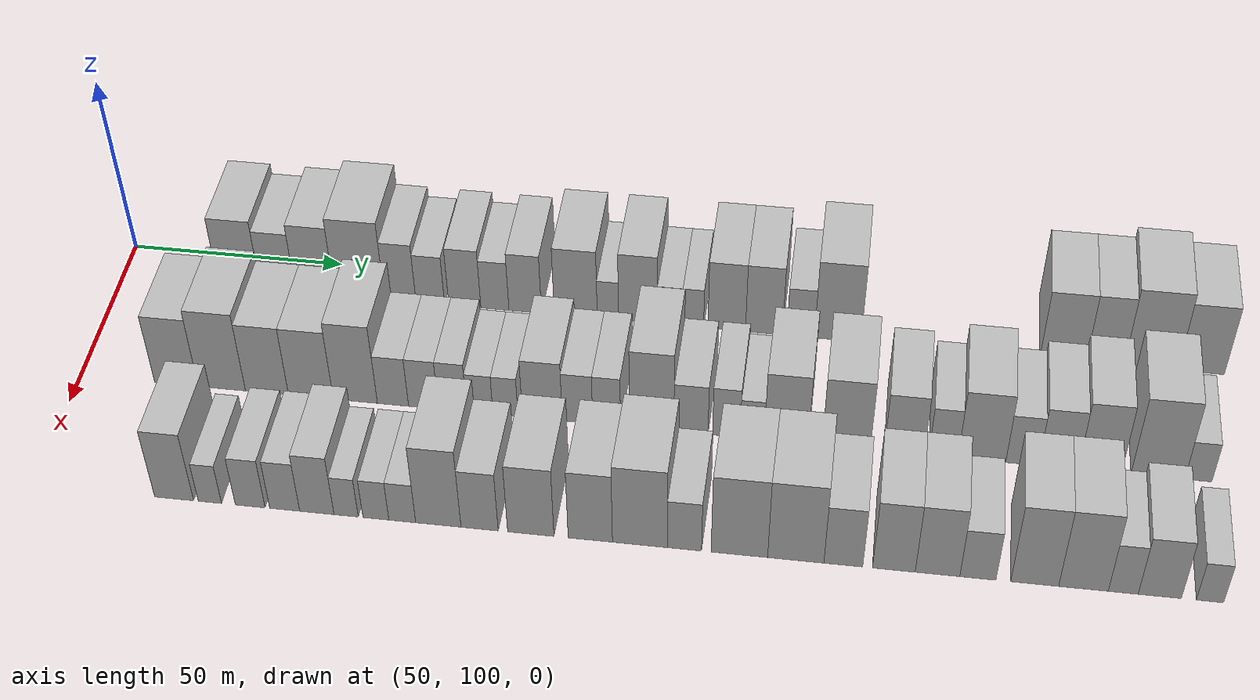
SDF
<sdf version="1.6">
 <world name="default">
  <model name="building_52">
   <static>1</static>
   <pose>50.0000 127.8642 0 0.000000 0.000000 0.000000</pose>
   <link name="link">
    <pose>0 0 10.50 0 0 0</pose>
    <collision name="collision"><geometry><box><size>20.0000 10.0431 21.0000</size></box></geometry></collision>
    <visual name="visual">
     <cast_shadows>0</cast_shadows>
     <geometry><box><size>20.0000 10.0431 21.0000</size></box></geometry>
     <material>
      <script>
       <uri>model://HANNAS_wall/materials/scripts</uri>
       <uri>model://HANNAS_wall/materials/textures</uri>
       <name>vrc/HANNAS_wall</name>
      </script>
     </material>
    </visual>
   </link>
  </model>
  <model name="building_53">
   <static>1</static>
   <pose>50.0000 137.0597 0 0.000000 0.000000 0.000000</pose>
   <link name="link">
    <pose>0 0 9.00 0 0 0</pose>
    <collision name="collision"><geometry><box><size>20.0000 8.3479 18.0000</size></box></geometry></collision>
    <visual name="visual">
     <cast_shadows>0</cast_shadows>
     <geometry><box><size>20.0000 8.3479 18.0000</size></box></geometry>
     <material>
      <script>
       <uri>model://HANNAS_wall/materials/scripts</uri>
       <uri>model://HANNAS_wall/materials/textures</uri>
       <name>vrc/HANNAS_wall</name>
      </script>
     </material>
    </visual>
   </link>
  </model>
  <model name="building_54">
   <static>1</static>
   <pose>50.0000 145.9074 0 0.000000 0.000000 0.000000</pose>
   <link name="link">
    <pose>0 0 10.50 0 0 0</pose>
    <collision name="collision"><geometry><box><size>20.0000 9.3477 21.0000</size></box></geometry></collision>
    <visual name="visual">
     <cast_shadows>0</cast_shadows>
     <geometry><box><size>20.0000 9.3477 21.0000</size></box></geometry>
     <material>
      <script>
       <uri>model://HANNAS_wall/materials/scripts</uri>
       <uri>model://HANNAS_wall/materials/textures</uri>
       <name>vrc/HANNAS_wall</name>
      </script>
     </material>
    </visual>
   </link>
  </model>
  <model name="building_55">
   <static>1</static>
   <pose>50.0000 156.5273 0 0.000000 0.000000 0.000000</pose>
   <link name="link">
    <pose>0 0 12.00 0 0 0</pose>
    <collision name="collision"><geometry><box><size>20.0000 11.8921 24.0000</size></box></geometry></collision>
    <visual name="visual">
     <cast_shadows>0</cast_shadows>
     <geometry><box><size>20.0000 11.8921 24.0000</size></box></geometry>
     <material>
      <script>
       <uri>model://HANNAS_wall/materials/scripts</uri>
       <uri>model://HANNAS_wall/materials/textures</uri>
       <name>vrc/HANNAS_wall</name>
      </script>
     </material>
    </visual>
   </link>
  </model>
  <model name="building_56">
   <static>1</static>
   <pose>50.0000 166.1714 0 0.000000 0.000000 0.000000</pose>
   <link name="link">
    <pose>0 0 9.00 0 0 0</pose>
    <collision name="collision"><geometry><box><size>20.0000 7.3960 18.0000</size></box></geometry></collision>
    <visual name="visual">
     <cast_shadows>0</cast_shadows>
     <geometry><box><size>20.0000 7.3960 18.0000</size></box></geometry>
     <material>
      <script>
       <uri>model://HANNAS_wall/materials/scripts</uri>
       <uri>model://HANNAS_wall/materials/textures</uri>
       <name>vrc/HANNAS_wall</name>
      </script>
     </material>
    </visual>
   </link>
  </model>
  <model name="building_57">
   <static>1</static>
   <pose>50.0000 173.2329 0 0.000000 0.000000 0.000000</pose>
   <link name="link">
    <pose>0 0 7.50 0 0 0</pose>
    <collision name="collision"><geometry><box><size>20.0000 6.7270 15.0000</size></box></geometry></collision>
    <visual name="visual">
     <cast_shadows>0</cast_shadows>
     <geometry><box><size>20.0000 6.7270 15.0000</size></box></geometry>
     <material>
      <script>
       <uri>model://HANNAS_wall/materials/scripts</uri>
       <uri>model://HANNAS_wall/materials/textures</uri>
       <name>vrc/HANNAS_wall</name>
      </script>
     </material>
    </visual>
   </link>
  </model>
  <model name="building_58">
   <static>1</static>
   <pose>50.0000 181.3587 0 0.000000 0.000000 0.000000</pose>
   <link name="link">
    <pose>0 0 9.00 0 0 0</pose>
    <collision name="collision"><geometry><box><size>20.0000 7.5245 18.0000</size></box></geometry></collision>
    <visual name="visual">
     <cast_shadows>0</cast_shadows>
     <geometry><box><size>20.0000 7.5245 18.0000</size></box></geometry>
     <material>
      <script>
       <uri>model://HANNAS_wall/materials/scripts</uri>
       <uri>model://HANNAS_wall/materials/textures</uri>
       <name>vrc/HANNAS_wall</name>
      </script>
     </material>
    </visual>
   </link>
  </model>
  <model name="building_59">
   <static>1</static>
   <pose>50.0000 188.4044 0 0.000000 0.000000 0.000000</pose>
   <link name="link">
    <pose>0 0 7.50 0 0 0</pose>
    <collision name="collision"><geometry><box><size>20.0000 6.5669 15.0000</size></box></geometry></collision>
    <visual name="visual">
     <cast_shadows>0</cast_shadows>
     <geometry><box><size>20.0000 6.5669 15.0000</size></box></geometry>
     <material>
      <script>
       <uri>model://HANNAS_wall/materials/scripts</uri>
       <uri>model://HANNAS_wall/materials/textures</uri>
       <name>vrc/HANNAS_wall</name>
      </script>
     </material>
    </visual>
   </link>
  </model>
  <model name="building_60">
   <static>1</static>
   <pose>50.0000 195.4860 0 0.000000 0.000000 0.000000</pose>
   <link name="link">
    <pose>0 0 9.00 0 0 0</pose>
    <collision name="collision"><geometry><box><size>20.0000 7.5963 18.0000</size></box></geometry></collision>
    <visual name="visual">
     <cast_shadows>0</cast_shadows>
     <geometry><box><size>20.0000 7.5963 18.0000</size></box></geometry>
     <material>
      <script>
       <uri>model://HANNAS_wall/materials/scripts</uri>
       <uri>model://HANNAS_wall/materials/textures</uri>
       <name>vrc/HANNAS_wall</name>
      </script>
     </material>
    </visual>
   </link>
  </model>
  <model name="building_61">
   <static>1</static>
   <pose>50.0000 207.2871 0 0.000000 0.000000 0.000000</pose>
   <link name="link">
    <pose>0 0 10.50 0 0 0</pose>
    <collision name="collision"><geometry><box><size>20.0000 10.0059 21.0000</size></box></geometry></collision>
    <visual name="visual">
     <cast_shadows>0</cast_shadows>
     <geometry><box><size>20.0000 10.0059 21.0000</size></box></geometry>
     <material>
      <script>
       <uri>model://HANNAS_wall/materials/scripts</uri>
       <uri>model://HANNAS_wall/materials/textures</uri>
       <name>vrc/HANNAS_wall</name>
      </script>
     </material>
    </visual>
   </link>
  </model>
  <model name="building_62">
   <static>1</static>
   <pose>50.0000 214.7658 0 0.000000 0.000000 0.000000</pose>
   <link name="link">
    <pose>0 0 6.00 0 0 0</pose>
    <collision name="collision"><geometry><box><size>20.0000 4.9516 12.0000</size></box></geometry></collision>
    <visual name="visual">
     <cast_shadows>0</cast_shadows>
     <geometry><box><size>20.0000 4.9516 12.0000</size></box></geometry>
     <material>
      <script>
       <uri>model://HANNAS_wall/materials/scripts</uri>
       <uri>model://HANNAS_wall/materials/textures</uri>
       <name>vrc/HANNAS_wall</name>
      </script>
     </material>
    </visual>
   </link>
  </model>
  <model name="building_63">
   <static>1</static>
   <pose>50.0000 221.7209 0 0.000000 0.000000 0.000000</pose>
   <link name="link">
    <pose>0 0 10.50 0 0 0</pose>
    <collision name="collision"><geometry><box><size>20.0000 8.9585 21.0000</size></box></geometry></collision>
    <visual name="visual">
     <cast_shadows>0</cast_shadows>
     <geometry><box><size>20.0000 8.9585 21.0000</size></box></geometry>
     <material>
      <script>
       <uri>model://HANNAS_wall/materials/scripts</uri>
       <uri>model://HANNAS_wall/materials/textures</uri>
       <name>vrc/HANNAS_wall</name>
      </script>
     </material>
    </visual>
   </link>
  </model>
  <model name="building_64">
   <static>1</static>
   <pose>50.0000 229.0972 0 0.000000 0.000000 0.000000</pose>
   <link name="link">
    <pose>0 0 6.00 0 0 0</pose>
    <collision name="collision"><geometry><box><size>20.0000 5.7941 12.0000</size></box></geometry></collision>
    <visual name="visual">
     <cast_shadows>0</cast_shadows>
     <geometry><box><size>20.0000 5.7941 12.0000</size></box></geometry>
     <material>
      <script>
       <uri>model://HANNAS_wall/materials/scripts</uri>
       <uri>model://HANNAS_wall/materials/textures</uri>
       <name>vrc/HANNAS_wall</name>
      </script>
     </material>
    </visual>
   </link>
  </model>
  <model name="building_65">
   <static>1</static>
   <pose>50.0000 234.4297 0 0.000000 0.000000 0.000000</pose>
   <link name="link">
    <pose>0 0 6.00 0 0 0</pose>
    <collision name="collision"><geometry><box><size>20.0000 4.8709 12.0000</size></box></geometry></collision>
    <visual name="visual">
     <cast_shadows>0</cast_shadows>
     <geometry><box><size>20.0000 4.8709 12.0000</size></box></geometry>
     <material>
      <script>
       <uri>model://HANNAS_wall/materials/scripts</uri>
       <uri>model://HANNAS_wall/materials/textures</uri>
       <name>vrc/HANNAS_wall</name>
      </script>
     </material>
    </visual>
   </link>
  </model>
  <model name="building_66">
   <static>1</static>
   <pose>50.0000 242.1721 0 0.000000 0.000000 0.000000</pose>
   <link name="link">
    <pose>0 0 10.50 0 0 0</pose>
    <collision name="collision"><geometry><box><size>20.0000 8.6137 21.0000</size></box></geometry></collision>
    <visual name="visual">
     <cast_shadows>0</cast_shadows>
     <geometry><box><size>20.0000 8.6137 21.0000</size></box></geometry>
     <material>
      <script>
       <uri>model://HANNAS_wall/materials/scripts</uri>
       <uri>model://HANNAS_wall/materials/textures</uri>
       <name>vrc/HANNAS_wall</name>
      </script>
     </material>
    </visual>
   </link>
  </model>
  <model name="building_67">
   <static>1</static>
   <pose>50.0000 250.7116 0 0.000000 0.000000 0.000000</pose>
   <link name="link">
    <pose>0 0 10.50 0 0 0</pose>
    <collision name="collision"><geometry><box><size>20.0000 8.4654 21.0000</size></box></geometry></collision>
    <visual name="visual">
     <cast_shadows>0</cast_shadows>
     <geometry><box><size>20.0000 8.4654 21.0000</size></box></geometry>
     <material>
      <script>
       <uri>model://HANNAS_wall/materials/scripts</uri>
       <uri>model://HANNAS_wall/materials/textures</uri>
       <name>vrc/HANNAS_wall</name>
      </script>
     </material>
    </visual>
   </link>
  </model>
  <model name="building_68">
   <static>1</static>
   <pose>50.0000 259.1031 0 0.000000 0.000000 0.000000</pose>
   <link name="link">
    <pose>0 0 7.50 0 0 0</pose>
    <collision name="collision"><geometry><box><size>20.0000 6.3175 15.0000</size></box></geometry></collision>
    <visual name="visual">
     <cast_shadows>0</cast_shadows>
     <geometry><box><size>20.0000 6.3175 15.0000</size></box></geometry>
     <material>
      <script>
       <uri>model://HANNAS_wall/materials/scripts</uri>
       <uri>model://HANNAS_wall/materials/textures</uri>
       <name>vrc/HANNAS_wall</name>
      </script>
     </material>
    </visual>
   </link>
  </model>
  <model name="building_69">
   <static>1</static>
   <pose>50.0000 267.5452 0 0.000000 0.000000 0.000000</pose>
   <link name="link">
    <pose>0 0 12.00 0 0 0</pose>
    <collision name="collision"><geometry><box><size>20.0000 10.5668 24.0000</size></box></geometry></collision>
    <visual name="visual">
     <cast_shadows>0</cast_shadows>
     <geometry><box><size>20.0000 10.5668 24.0000</size></box></geometry>
     <material>
      <script>
       <uri>model://HANNAS_wall/materials/scripts</uri>
       <uri>model://HANNAS_wall/materials/textures</uri>
       <name>vrc/HANNAS_wall</name>
      </script>
     </material>
    </visual>
   </link>
  </model>
  <model name="building_70">
   <static>1</static>
   <pose>50.0000 318.3937 0 0.000000 0.000000 0.000000</pose>
   <link name="link">
    <pose>0 0 10.50 0 0 0</pose>
    <collision name="collision"><geometry><box><size>20.0000 10.3768 21.0000</size></box></geometry></collision>
    <visual name="visual">
     <cast_shadows>0</cast_shadows>
     <geometry><box><size>20.0000 10.3768 21.0000</size></box></geometry>
     <material>
      <script>
       <uri>model://HANNAS_wall/materials/scripts</uri>
       <uri>model://HANNAS_wall/materials/textures</uri>
       <name>vrc/HANNAS_wall</name>
      </script>
     </material>
    </visual>
   </link>
  </model>
  <model name="building_71">
   <static>1</static>
   <pose>50.0000 327.7882 0 0.000000 0.000000 0.000000</pose>
   <link name="link">
    <pose>0 0 10.50 0 0 0</pose>
    <collision name="collision"><geometry><box><size>20.0000 8.4122 21.0000</size></box></geometry></collision>
    <visual name="visual">
     <cast_shadows>0</cast_shadows>
     <geometry><box><size>20.0000 8.4122 21.0000</size></box></geometry>
     <material>
      <script>
       <uri>model://HANNAS_wall/materials/scripts</uri>
       <uri>model://HANNAS_wall/materials/textures</uri>
       <name>vrc/HANNAS_wall</name>
      </script>
     </material>
    </visual>
   </link>
  </model>
  <model name="building_72">
   <static>1</static>
   <pose>50.0000 337.9670 0 0.000000 0.000000 0.000000</pose>
   <link name="link">
    <pose>0 0 12.00 0 0 0</pose>
    <collision name="collision"><geometry><box><size>20.0000 11.9453 24.0000</size></box></geometry></collision>
    <visual name="visual">
     <cast_shadows>0</cast_shadows>
     <geometry><box><size>20.0000 11.9453 24.0000</size></box></geometry>
     <material>
      <script>
       <uri>model://HANNAS_wall/materials/scripts</uri>
       <uri>model://HANNAS_wall/materials/textures</uri>
       <name>vrc/HANNAS_wall</name>
      </script>
     </material>
    </visual>
   </link>
  </model>
  <model name="building_73">
   <static>1</static>
   <pose>50.0000 349.0820 0 0.000000 0.000000 0.000000</pose>
   <link name="link">
    <pose>0 0 10.50 0 0 0</pose>
    <collision name="collision"><geometry><box><size>20.0000 10.2847 21.0000</size></box></geometry></collision>
    <visual name="visual">
     <cast_shadows>0</cast_shadows>
     <geometry><box><size>20.0000 10.2847 21.0000</size></box></geometry>
     <material>
      <script>
       <uri>model://HANNAS_wall/materials/scripts</uri>
       <uri>model://HANNAS_wall/materials/textures</uri>
       <name>vrc/HANNAS_wall</name>
      </script>
     </material>
    </visual>
   </link>
  </model>
  <model name="building_122">
   <static>1</static>
   <pose>82.0000 122.0534 0 0.000000 0.000000 0.000000</pose>
   <link name="link">
    <pose>0 0 10.50 0 0 0</pose>
    <collision name="collision"><geometry><box><size>20.0000 9.9658 21.0000</size></box></geometry></collision>
    <visual name="visual">
     <cast_shadows>0</cast_shadows>
     <geometry><box><size>20.0000 9.9658 21.0000</size></box></geometry>
     <material>
      <script>
       <uri>model://HANNAS_wall/materials/scripts</uri>
       <uri>model://HANNAS_wall/materials/textures</uri>
       <name>vrc/HANNAS_wall</name>
      </script>
     </material>
    </visual>
   </link>
  </model>
  <model name="building_123">
   <static>1</static>
   <pose>82.0000 132.4425 0 0.000000 0.000000 0.000000</pose>
   <link name="link">
    <pose>0 0 12.00 0 0 0</pose>
    <collision name="collision"><geometry><box><size>20.0000 10.8123 24.0000</size></box></geometry></collision>
    <visual name="visual">
     <cast_shadows>0</cast_shadows>
     <geometry><box><size>20.0000 10.8123 24.0000</size></box></geometry>
     <material>
      <script>
       <uri>model://HANNAS_wall/materials/scripts</uri>
       <uri>model://HANNAS_wall/materials/textures</uri>
       <name>vrc/HANNAS_wall</name>
      </script>
     </material>
    </visual>
   </link>
  </model>
  <model name="building_124">
   <static>1</static>
   <pose>82.0000 142.7403 0 0.000000 0.000000 0.000000</pose>
   <link name="link">
    <pose>0 0 10.50 0 0 0</pose>
    <collision name="collision"><geometry><box><size>20.0000 9.7835 21.0000</size></box></geometry></collision>
    <visual name="visual">
     <cast_shadows>0</cast_shadows>
     <geometry><box><size>20.0000 9.7835 21.0000</size></box></geometry>
     <material>
      <script>
       <uri>model://HANNAS_wall/materials/scripts</uri>
       <uri>model://HANNAS_wall/materials/textures</uri>
       <name>vrc/HANNAS_wall</name>
      </script>
     </material>
    </visual>
   </link>
  </model>
  <model name="building_125">
   <static>1</static>
   <pose>82.0000 152.7131 0 0.000000 0.000000 0.000000</pose>
   <link name="link">
    <pose>0 0 10.50 0 0 0</pose>
    <collision name="collision"><geometry><box><size>20.0000 10.1620 21.0000</size></box></geometry></collision>
    <visual name="visual">
     <cast_shadows>0</cast_shadows>
     <geometry><box><size>20.0000 10.1620 21.0000</size></box></geometry>
     <material>
      <script>
       <uri>model://HANNAS_wall/materials/scripts</uri>
       <uri>model://HANNAS_wall/materials/textures</uri>
       <name>vrc/HANNAS_wall</name>
      </script>
     </material>
    </visual>
   </link>
  </model>
  <model name="building_126">
   <static>1</static>
   <pose>82.0000 162.7843 0 0.000000 0.000000 0.000000</pose>
   <link name="link">
    <pose>0 0 12.00 0 0 0</pose>
    <collision name="collision"><geometry><box><size>20.0000 9.9805 24.0000</size></box></geometry></collision>
    <visual name="visual">
     <cast_shadows>0</cast_shadows>
     <geometry><box><size>20.0000 9.9805 24.0000</size></box></geometry>
     <material>
      <script>
       <uri>model://HANNAS_wall/materials/scripts</uri>
       <uri>model://HANNAS_wall/materials/textures</uri>
       <name>vrc/HANNAS_wall</name>
      </script>
     </material>
    </visual>
   </link>
  </model>
  <model name="building_127">
   <static>1</static>
   <pose>82.0000 171.2864 0 0.000000 0.000000 0.000000</pose>
   <link name="link">
    <pose>0 0 7.50 0 0 0</pose>
    <collision name="collision"><geometry><box><size>20.0000 7.0238 15.0000</size></box></geometry></collision>
    <visual name="visual">
     <cast_shadows>0</cast_shadows>
     <geometry><box><size>20.0000 7.0238 15.0000</size></box></geometry>
     <material>
      <script>
       <uri>model://HANNAS_wall/materials/scripts</uri>
       <uri>model://HANNAS_wall/materials/textures</uri>
       <name>vrc/HANNAS_wall</name>
      </script>
     </material>
    </visual>
   </link>
  </model>
  <model name="building_128">
   <static>1</static>
   <pose>82.0000 178.1416 0 0.000000 0.000000 0.000000</pose>
   <link name="link">
    <pose>0 0 7.50 0 0 0</pose>
    <collision name="collision"><geometry><box><size>20.0000 6.6865 15.0000</size></box></geometry></collision>
    <visual name="visual">
     <cast_shadows>0</cast_shadows>
     <geometry><box><size>20.0000 6.6865 15.0000</size></box></geometry>
     <material>
      <script>
       <uri>model://HANNAS_wall/materials/scripts</uri>
       <uri>model://HANNAS_wall/materials/textures</uri>
       <name>vrc/HANNAS_wall</name>
      </script>
     </material>
    </visual>
   </link>
  </model>
  <model name="building_129">
   <static>1</static>
   <pose>82.0000 184.6692 0 0.000000 0.000000 0.000000</pose>
   <link name="link">
    <pose>0 0 7.50 0 0 0</pose>
    <collision name="collision"><geometry><box><size>20.0000 6.3689 15.0000</size></box></geometry></collision>
    <visual name="visual">
     <cast_shadows>0</cast_shadows>
     <geometry><box><size>20.0000 6.3689 15.0000</size></box></geometry>
     <material>
      <script>
       <uri>model://HANNAS_wall/materials/scripts</uri>
       <uri>model://HANNAS_wall/materials/textures</uri>
       <name>vrc/HANNAS_wall</name>
      </script>
     </material>
    </visual>
   </link>
  </model>
  <model name="building_130">
   <static>1</static>
   <pose>82.0000 190.7847 0 0.000000 0.000000 0.000000</pose>
   <link name="link">
    <pose>0 0 6.00 0 0 0</pose>
    <collision name="collision"><geometry><box><size>20.0000 5.8620 12.0000</size></box></geometry></collision>
    <visual name="visual">
     <cast_shadows>0</cast_shadows>
     <geometry><box><size>20.0000 5.8620 12.0000</size></box></geometry>
     <material>
      <script>
       <uri>model://HANNAS_wall/materials/scripts</uri>
       <uri>model://HANNAS_wall/materials/textures</uri>
       <name>vrc/HANNAS_wall</name>
      </script>
     </material>
    </visual>
   </link>
  </model>
  <model name="building_131">
   <static>1</static>
   <pose>82.0000 196.5045 0 0.000000 0.000000 0.000000</pose>
   <link name="link">
    <pose>0 0 6.00 0 0 0</pose>
    <collision name="collision"><geometry><box><size>20.0000 5.5776 12.0000</size></box></geometry></collision>
    <visual name="visual">
     <cast_shadows>0</cast_shadows>
     <geometry><box><size>20.0000 5.5776 12.0000</size></box></geometry>
     <material>
      <script>
       <uri>model://HANNAS_wall/materials/scripts</uri>
       <uri>model://HANNAS_wall/materials/textures</uri>
       <name>vrc/HANNAS_wall</name>
      </script>
     </material>
    </visual>
   </link>
  </model>
  <model name="building_132">
   <static>1</static>
   <pose>82.0000 204.7109 0 0.000000 0.000000 0.000000</pose>
   <link name="link">
    <pose>0 0 9.00 0 0 0</pose>
    <collision name="collision"><geometry><box><size>20.0000 8.8352 18.0000</size></box></geometry></collision>
    <visual name="visual">
     <cast_shadows>0</cast_shadows>
     <geometry><box><size>20.0000 8.8352 18.0000</size></box></geometry>
     <material>
      <script>
       <uri>model://HANNAS_wall/materials/scripts</uri>
       <uri>model://HANNAS_wall/materials/textures</uri>
       <name>vrc/HANNAS_wall</name>
      </script>
     </material>
    </visual>
   </link>
  </model>
  <model name="building_133">
   <static>1</static>
   <pose>82.0000 212.5075 0 0.000000 0.000000 0.000000</pose>
   <link name="link">
    <pose>0 0 7.50 0 0 0</pose>
    <collision name="collision"><geometry><box><size>20.0000 6.7581 15.0000</size></box></geometry></collision>
    <visual name="visual">
     <cast_shadows>0</cast_shadows>
     <geometry><box><size>20.0000 6.7581 15.0000</size></box></geometry>
     <material>
      <script>
       <uri>model://HANNAS_wall/materials/scripts</uri>
       <uri>model://HANNAS_wall/materials/textures</uri>
       <name>vrc/HANNAS_wall</name>
      </script>
     </material>
    </visual>
   </link>
  </model>
  <model name="building_134">
   <static>1</static>
   <pose>82.0000 218.9663 0 0.000000 0.000000 0.000000</pose>
   <link name="link">
    <pose>0 0 7.50 0 0 0</pose>
    <collision name="collision"><geometry><box><size>20.0000 6.1593 15.0000</size></box></geometry></collision>
    <visual name="visual">
     <cast_shadows>0</cast_shadows>
     <geometry><box><size>20.0000 6.1593 15.0000</size></box></geometry>
     <material>
      <script>
       <uri>model://HANNAS_wall/materials/scripts</uri>
       <uri>model://HANNAS_wall/materials/textures</uri>
       <name>vrc/HANNAS_wall</name>
      </script>
     </material>
    </visual>
   </link>
  </model>
  <model name="building_135">
   <static>1</static>
   <pose>82.0000 228.9132 0 0.000000 0.000000 0.000000</pose>
   <link name="link">
    <pose>0 0 12.00 0 0 0</pose>
    <collision name="collision"><geometry><box><size>20.0000 9.7345 24.0000</size></box></geometry></collision>
    <visual name="visual">
     <cast_shadows>0</cast_shadows>
     <geometry><box><size>20.0000 9.7345 24.0000</size></box></geometry>
     <material>
      <script>
       <uri>model://HANNAS_wall/materials/scripts</uri>
       <uri>model://HANNAS_wall/materials/textures</uri>
       <name>vrc/HANNAS_wall</name>
      </script>
     </material>
    </visual>
   </link>
  </model>
  <model name="building_136">
   <static>1</static>
   <pose>82.0000 237.5287 0 0.000000 0.000000 0.000000</pose>
   <link name="link">
    <pose>0 0 7.50 0 0 0</pose>
    <collision name="collision"><geometry><box><size>20.0000 7.4964 15.0000</size></box></geometry></collision>
    <visual name="visual">
     <cast_shadows>0</cast_shadows>
     <geometry><box><size>20.0000 7.4964 15.0000</size></box></geometry>
     <material>
      <script>
       <uri>model://HANNAS_wall/materials/scripts</uri>
       <uri>model://HANNAS_wall/materials/textures</uri>
       <name>vrc/HANNAS_wall</name>
      </script>
     </material>
    </visual>
   </link>
  </model>
  <model name="building_137">
   <static>1</static>
   <pose>82.0000 245.2848 0 0.000000 0.000000 0.000000</pose>
   <link name="link">
    <pose>0 0 7.50 0 0 0</pose>
    <collision name="collision"><geometry><box><size>20.0000 6.0158 15.0000</size></box></geometry></collision>
    <visual name="visual">
     <cast_shadows>0</cast_shadows>
     <geometry><box><size>20.0000 6.0158 15.0000</size></box></geometry>
     <material>
      <script>
       <uri>model://HANNAS_wall/materials/scripts</uri>
       <uri>model://HANNAS_wall/materials/textures</uri>
       <name>vrc/HANNAS_wall</name>
      </script>
     </material>
    </visual>
   </link>
  </model>
  <model name="building_138">
   <static>1</static>
   <pose>82.0000 250.9444 0 0.000000 0.000000 0.000000</pose>
   <link name="link">
    <pose>0 0 6.00 0 0 0</pose>
    <collision name="collision"><geometry><box><size>20.0000 5.3035 12.0000</size></box></geometry></collision>
    <visual name="visual">
     <cast_shadows>0</cast_shadows>
     <geometry><box><size>20.0000 5.3035 12.0000</size></box></geometry>
     <material>
      <script>
       <uri>model://HANNAS_wall/materials/scripts</uri>
       <uri>model://HANNAS_wall/materials/textures</uri>
       <name>vrc/HANNAS_wall</name>
      </script>
     </material>
    </visual>
   </link>
  </model>
  <model name="building_139">
   <static>1</static>
   <pose>82.0000 258.3952 0 0.000000 0.000000 0.000000</pose>
   <link name="link">
    <pose>0 0 10.50 0 0 0</pose>
    <collision name="collision"><geometry><box><size>20.0000 9.5983 21.0000</size></box></geometry></collision>
    <visual name="visual">
     <cast_shadows>0</cast_shadows>
     <geometry><box><size>20.0000 9.5983 21.0000</size></box></geometry>
     <material>
      <script>
       <uri>model://HANNAS_wall/materials/scripts</uri>
       <uri>model://HANNAS_wall/materials/textures</uri>
       <name>vrc/HANNAS_wall</name>
      </script>
     </material>
    </visual>
   </link>
  </model>
  <model name="building_140">
   <static>1</static>
   <pose>82.0000 271.4046 0 0.000000 0.000000 0.000000</pose>
   <link name="link">
    <pose>0 0 10.50 0 0 0</pose>
    <collision name="collision"><geometry><box><size>20.0000 10.4204 21.0000</size></box></geometry></collision>
    <visual name="visual">
     <cast_shadows>0</cast_shadows>
     <geometry><box><size>20.0000 10.4204 21.0000</size></box></geometry>
     <material>
      <script>
       <uri>model://HANNAS_wall/materials/scripts</uri>
       <uri>model://HANNAS_wall/materials/textures</uri>
       <name>vrc/HANNAS_wall</name>
      </script>
     </material>
    </visual>
   </link>
  </model>
  <model name="building_141">
   <static>1</static>
   <pose>82.0000 283.9188 0 0.000000 0.000000 0.000000</pose>
   <link name="link">
    <pose>0 0 9.00 0 0 0</pose>
    <collision name="collision"><geometry><box><size>20.0000 8.6080 18.0000</size></box></geometry></collision>
    <visual name="visual">
     <cast_shadows>0</cast_shadows>
     <geometry><box><size>20.0000 8.6080 18.0000</size></box></geometry>
     <material>
      <script>
       <uri>model://HANNAS_wall/materials/scripts</uri>
       <uri>model://HANNAS_wall/materials/textures</uri>
       <name>vrc/HANNAS_wall</name>
      </script>
     </material>
    </visual>
   </link>
  </model>
  <model name="building_142">
   <static>1</static>
   <pose>82.0000 292.3722 0 0.000000 0.000000 0.000000</pose>
   <link name="link">
    <pose>0 0 7.50 0 0 0</pose>
    <collision name="collision"><geometry><box><size>20.0000 6.2986 15.0000</size></box></geometry></collision>
    <visual name="visual">
     <cast_shadows>0</cast_shadows>
     <geometry><box><size>20.0000 6.2986 15.0000</size></box></geometry>
     <material>
      <script>
       <uri>model://HANNAS_wall/materials/scripts</uri>
       <uri>model://HANNAS_wall/materials/textures</uri>
       <name>vrc/HANNAS_wall</name>
      </script>
     </material>
    </visual>
   </link>
  </model>
  <model name="building_143">
   <static>1</static>
   <pose>82.0000 300.6507 0 0.000000 0.000000 0.000000</pose>
   <link name="link">
    <pose>0 0 10.50 0 0 0</pose>
    <collision name="collision"><geometry><box><size>20.0000 10.2586 21.0000</size></box></geometry></collision>
    <visual name="visual">
     <cast_shadows>0</cast_shadows>
     <geometry><box><size>20.0000 10.2586 21.0000</size></box></geometry>
     <material>
      <script>
       <uri>model://HANNAS_wall/materials/scripts</uri>
       <uri>model://HANNAS_wall/materials/textures</uri>
       <name>vrc/HANNAS_wall</name>
      </script>
     </material>
    </visual>
   </link>
  </model>
  <model name="building_144">
   <static>1</static>
   <pose>82.0000 309.2779 0 0.000000 0.000000 0.000000</pose>
   <link name="link">
    <pose>0 0 7.50 0 0 0</pose>
    <collision name="collision"><geometry><box><size>20.0000 6.9957 15.0000</size></box></geometry></collision>
    <visual name="visual">
     <cast_shadows>0</cast_shadows>
     <geometry><box><size>20.0000 6.9957 15.0000</size></box></geometry>
     <material>
      <script>
       <uri>model://HANNAS_wall/materials/scripts</uri>
       <uri>model://HANNAS_wall/materials/textures</uri>
       <name>vrc/HANNAS_wall</name>
      </script>
     </material>
    </visual>
   </link>
  </model>
  <model name="building_145">
   <static>1</static>
   <pose>82.0000 317.0067 0 0.000000 0.000000 0.000000</pose>
   <link name="link">
    <pose>0 0 9.00 0 0 0</pose>
    <collision name="collision"><geometry><box><size>20.0000 8.4618 18.0000</size></box></geometry></collision>
    <visual name="visual">
     <cast_shadows>0</cast_shadows>
     <geometry><box><size>20.0000 8.4618 18.0000</size></box></geometry>
     <material>
      <script>
       <uri>model://HANNAS_wall/materials/scripts</uri>
       <uri>model://HANNAS_wall/materials/textures</uri>
       <name>vrc/HANNAS_wall</name>
      </script>
     </material>
    </visual>
   </link>
  </model>
  <model name="building_146">
   <static>1</static>
   <pose>82.0000 325.8336 0 0.000000 0.000000 0.000000</pose>
   <link name="link">
    <pose>0 0 10.50 0 0 0</pose>
    <collision name="collision"><geometry><box><size>20.0000 9.1920 21.0000</size></box></geometry></collision>
    <visual name="visual">
     <cast_shadows>0</cast_shadows>
     <geometry><box><size>20.0000 9.1920 21.0000</size></box></geometry>
     <material>
      <script>
       <uri>model://HANNAS_wall/materials/scripts</uri>
       <uri>model://HANNAS_wall/materials/textures</uri>
       <name>vrc/HANNAS_wall</name>
      </script>
     </material>
    </visual>
   </link>
  </model>
  <model name="building_147">
   <static>1</static>
   <pose>82.0000 338.1242 0 0.000000 0.000000 0.000000</pose>
   <link name="link">
    <pose>0 0 12.00 0 0 0</pose>
    <collision name="collision"><geometry><box><size>20.0000 11.3893 24.0000</size></box></geometry></collision>
    <visual name="visual">
     <cast_shadows>0</cast_shadows>
     <geometry><box><size>20.0000 11.3893 24.0000</size></box></geometry>
     <material>
      <script>
       <uri>model://HANNAS_wall/materials/scripts</uri>
       <uri>model://HANNAS_wall/materials/textures</uri>
       <name>vrc/HANNAS_wall</name>
      </script>
     </material>
    </visual>
   </link>
  </model>
  <model name="building_148">
   <static>1</static>
   <pose>82.0000 346.6769 0 0.000000 0.000000 0.000000</pose>
   <link name="link">
    <pose>0 0 6.00 0 0 0</pose>
    <collision name="collision"><geometry><box><size>20.0000 5.7160 12.0000</size></box></geometry></collision>
    <visual name="visual">
     <cast_shadows>0</cast_shadows>
     <geometry><box><size>20.0000 5.7160 12.0000</size></box></geometry>
     <material>
      <script>
       <uri>model://HANNAS_wall/materials/scripts</uri>
       <uri>model://HANNAS_wall/materials/textures</uri>
       <name>vrc/HANNAS_wall</name>
      </script>
     </material>
    </visual>
   </link>
  </model>
  <model name="building_198">
   <static>1</static>
   <pose>114.0000 130.8429 0 0.000000 0.000000 0.000000</pose>
   <link name="link">
    <pose>0 0 10.50 0 0 0</pose>
    <collision name="collision"><geometry><box><size>20.0000 8.4913 21.0000</size></box></geometry></collision>
    <visual name="visual">
     <cast_shadows>0</cast_shadows>
     <geometry><box><size>20.0000 8.4913 21.0000</size></box></geometry>
     <material>
      <script>
       <uri>model://HANNAS_wall/materials/scripts</uri>
       <uri>model://HANNAS_wall/materials/textures</uri>
       <name>vrc/HANNAS_wall</name>
      </script>
     </material>
    </visual>
   </link>
  </model>
  <model name="building_199">
   <static>1</static>
   <pose>114.0000 138.6209 0 0.000000 0.000000 0.000000</pose>
   <link name="link">
    <pose>0 0 6.00 0 0 0</pose>
    <collision name="collision"><geometry><box><size>20.0000 5.0648 12.0000</size></box></geometry></collision>
    <visual name="visual">
     <cast_shadows>0</cast_shadows>
     <geometry><box><size>20.0000 5.0648 12.0000</size></box></geometry>
     <material>
      <script>
       <uri>model://HANNAS_wall/materials/scripts</uri>
       <uri>model://HANNAS_wall/materials/textures</uri>
       <name>vrc/HANNAS_wall</name>
      </script>
     </material>
    </visual>
   </link>
  </model>
  <model name="building_200">
   <static>1</static>
   <pose>114.0000 147.3830 0 0.000000 0.000000 0.000000</pose>
   <link name="link">
    <pose>0 0 7.50 0 0 0</pose>
    <collision name="collision"><geometry><box><size>20.0000 6.4594 15.0000</size></box></geometry></collision>
    <visual name="visual">
     <cast_shadows>0</cast_shadows>
     <geometry><box><size>20.0000 6.4594 15.0000</size></box></geometry>
     <material>
      <script>
       <uri>model://HANNAS_wall/materials/scripts</uri>
       <uri>model://HANNAS_wall/materials/textures</uri>
       <name>vrc/HANNAS_wall</name>
      </script>
     </material>
    </visual>
   </link>
  </model>
  <model name="building_201">
   <static>1</static>
   <pose>114.0000 154.8504 0 0.000000 0.000000 0.000000</pose>
   <link name="link">
    <pose>0 0 7.50 0 0 0</pose>
    <collision name="collision"><geometry><box><size>20.0000 6.4753 15.0000</size></box></geometry></collision>
    <visual name="visual">
     <cast_shadows>0</cast_shadows>
     <geometry><box><size>20.0000 6.4753 15.0000</size></box></geometry>
     <material>
      <script>
       <uri>model://HANNAS_wall/materials/scripts</uri>
       <uri>model://HANNAS_wall/materials/textures</uri>
       <name>vrc/HANNAS_wall</name>
      </script>
     </material>
    </visual>
   </link>
  </model>
  <model name="building_202">
   <static>1</static>
   <pose>114.0000 161.7863 0 0.000000 0.000000 0.000000</pose>
   <link name="link">
    <pose>0 0 9.00 0 0 0</pose>
    <collision name="collision"><geometry><box><size>20.0000 7.3965 18.0000</size></box></geometry></collision>
    <visual name="visual">
     <cast_shadows>0</cast_shadows>
     <geometry><box><size>20.0000 7.3965 18.0000</size></box></geometry>
     <material>
      <script>
       <uri>model://HANNAS_wall/materials/scripts</uri>
       <uri>model://HANNAS_wall/materials/textures</uri>
       <name>vrc/HANNAS_wall</name>
      </script>
     </material>
    </visual>
   </link>
  </model>
  <model name="building_203">
   <static>1</static>
   <pose>114.0000 168.0929 0 0.000000 0.000000 0.000000</pose>
   <link name="link">
    <pose>0 0 6.00 0 0 0</pose>
    <collision name="collision"><geometry><box><size>20.0000 5.2168 12.0000</size></box></geometry></collision>
    <visual name="visual">
     <cast_shadows>0</cast_shadows>
     <geometry><box><size>20.0000 5.2168 12.0000</size></box></geometry>
     <material>
      <script>
       <uri>model://HANNAS_wall/materials/scripts</uri>
       <uri>model://HANNAS_wall/materials/textures</uri>
       <name>vrc/HANNAS_wall</name>
      </script>
     </material>
    </visual>
   </link>
  </model>
  <model name="building_204">
   <static>1</static>
   <pose>114.0000 174.4770 0 0.000000 0.000000 0.000000</pose>
   <link name="link">
    <pose>0 0 6.00 0 0 0</pose>
    <collision name="collision"><geometry><box><size>20.0000 5.5514 12.0000</size></box></geometry></collision>
    <visual name="visual">
     <cast_shadows>0</cast_shadows>
     <geometry><box><size>20.0000 5.5514 12.0000</size></box></geometry>
     <material>
      <script>
       <uri>model://HANNAS_wall/materials/scripts</uri>
       <uri>model://HANNAS_wall/materials/textures</uri>
       <name>vrc/HANNAS_wall</name>
      </script>
     </material>
    </visual>
   </link>
  </model>
  <model name="building_205">
   <static>1</static>
   <pose>114.0000 180.1232 0 0.000000 0.000000 0.000000</pose>
   <link name="link">
    <pose>0 0 6.00 0 0 0</pose>
    <collision name="collision"><geometry><box><size>20.0000 5.7410 12.0000</size></box></geometry></collision>
    <visual name="visual">
     <cast_shadows>0</cast_shadows>
     <geometry><box><size>20.0000 5.7410 12.0000</size></box></geometry>
     <material>
      <script>
       <uri>model://HANNAS_wall/materials/scripts</uri>
       <uri>model://HANNAS_wall/materials/textures</uri>
       <name>vrc/HANNAS_wall</name>
      </script>
     </material>
    </visual>
   </link>
  </model>
  <model name="building_206">
   <static>1</static>
   <pose>114.0000 187.8244 0 0.000000 0.000000 0.000000</pose>
   <link name="link">
    <pose>0 0 12.00 0 0 0</pose>
    <collision name="collision"><geometry><box><size>20.0000 9.6616 24.0000</size></box></geometry></collision>
    <visual name="visual">
     <cast_shadows>0</cast_shadows>
     <geometry><box><size>20.0000 9.6616 24.0000</size></box></geometry>
     <material>
      <script>
       <uri>model://HANNAS_wall/materials/scripts</uri>
       <uri>model://HANNAS_wall/materials/textures</uri>
       <name>vrc/HANNAS_wall</name>
      </script>
     </material>
    </visual>
   </link>
  </model>
  <model name="building_207">
   <static>1</static>
   <pose>114.0000 196.6089 0 0.000000 0.000000 0.000000</pose>
   <link name="link">
    <pose>0 0 9.00 0 0 0</pose>
    <collision name="collision"><geometry><box><size>20.0000 7.9073 18.0000</size></box></geometry></collision>
    <visual name="visual">
     <cast_shadows>0</cast_shadows>
     <geometry><box><size>20.0000 7.9073 18.0000</size></box></geometry>
     <material>
      <script>
       <uri>model://HANNAS_wall/materials/scripts</uri>
       <uri>model://HANNAS_wall/materials/textures</uri>
       <name>vrc/HANNAS_wall</name>
      </script>
     </material>
    </visual>
   </link>
  </model>
  <model name="building_208">
   <static>1</static>
   <pose>114.0000 207.4644 0 0.000000 0.000000 0.000000</pose>
   <link name="link">
    <pose>0 0 10.50 0 0 0</pose>
    <collision name="collision"><geometry><box><size>20.0000 9.8037 21.0000</size></box></geometry></collision>
    <visual name="visual">
     <cast_shadows>0</cast_shadows>
     <geometry><box><size>20.0000 9.8037 21.0000</size></box></geometry>
     <material>
      <script>
       <uri>model://HANNAS_wall/materials/scripts</uri>
       <uri>model://HANNAS_wall/materials/textures</uri>
       <name>vrc/HANNAS_wall</name>
      </script>
     </material>
    </visual>
   </link>
  </model>
  <model name="building_209">
   <static>1</static>
   <pose>114.0000 220.0263 0 0.000000 0.000000 0.000000</pose>
   <link name="link">
    <pose>0 0 10.50 0 0 0</pose>
    <collision name="collision"><geometry><box><size>20.0000 9.3202 21.0000</size></box></geometry></collision>
    <visual name="visual">
     <cast_shadows>0</cast_shadows>
     <geometry><box><size>20.0000 9.3202 21.0000</size></box></geometry>
     <material>
      <script>
       <uri>model://HANNAS_wall/materials/scripts</uri>
       <uri>model://HANNAS_wall/materials/textures</uri>
       <name>vrc/HANNAS_wall</name>
      </script>
     </material>
    </visual>
   </link>
  </model>
  <model name="building_210">
   <static>1</static>
   <pose>114.0000 230.4278 0 0.000000 0.000000 0.000000</pose>
   <link name="link">
    <pose>0 0 12.00 0 0 0</pose>
    <collision name="collision"><geometry><box><size>20.0000 11.4827 24.0000</size></box></geometry></collision>
    <visual name="visual">
     <cast_shadows>0</cast_shadows>
     <geometry><box><size>20.0000 11.4827 24.0000</size></box></geometry>
     <material>
      <script>
       <uri>model://HANNAS_wall/materials/scripts</uri>
       <uri>model://HANNAS_wall/materials/textures</uri>
       <name>vrc/HANNAS_wall</name>
      </script>
     </material>
    </visual>
   </link>
  </model>
  <model name="building_211">
   <static>1</static>
   <pose>114.0000 239.7473 0 0.000000 0.000000 0.000000</pose>
   <link name="link">
    <pose>0 0 7.50 0 0 0</pose>
    <collision name="collision"><geometry><box><size>20.0000 7.1563 15.0000</size></box></geometry></collision>
    <visual name="visual">
     <cast_shadows>0</cast_shadows>
     <geometry><box><size>20.0000 7.1563 15.0000</size></box></geometry>
     <material>
      <script>
       <uri>model://HANNAS_wall/materials/scripts</uri>
       <uri>model://HANNAS_wall/materials/textures</uri>
       <name>vrc/HANNAS_wall</name>
      </script>
     </material>
    </visual>
   </link>
  </model>
  <model name="building_212">
   <static>1</static>
   <pose>114.0000 251.2054 0 0.000000 0.000000 0.000000</pose>
   <link name="link">
    <pose>0 0 12.00 0 0 0</pose>
    <collision name="collision"><geometry><box><size>20.0000 11.7600 24.0000</size></box></geometry></collision>
    <visual name="visual">
     <cast_shadows>0</cast_shadows>
     <geometry><box><size>20.0000 11.7600 24.0000</size></box></geometry>
     <material>
      <script>
       <uri>model://HANNAS_wall/materials/scripts</uri>
       <uri>model://HANNAS_wall/materials/textures</uri>
       <name>vrc/HANNAS_wall</name>
      </script>
     </material>
    </visual>
   </link>
  </model>
  <model name="building_213">
   <static>1</static>
   <pose>114.0000 262.9080 0 0.000000 0.000000 0.000000</pose>
   <link name="link">
    <pose>0 0 12.00 0 0 0</pose>
    <collision name="collision"><geometry><box><size>20.0000 11.6451 24.0000</size></box></geometry></collision>
    <visual name="visual">
     <cast_shadows>0</cast_shadows>
     <geometry><box><size>20.0000 11.6451 24.0000</size></box></geometry>
     <material>
      <script>
       <uri>model://HANNAS_wall/materials/scripts</uri>
       <uri>model://HANNAS_wall/materials/textures</uri>
       <name>vrc/HANNAS_wall</name>
      </script>
     </material>
    </visual>
   </link>
  </model>
  <model name="building_214">
   <static>1</static>
   <pose>114.0000 272.7356 0 0.000000 0.000000 0.000000</pose>
   <link name="link">
    <pose>0 0 9.00 0 0 0</pose>
    <collision name="collision"><geometry><box><size>20.0000 8.0102 18.0000</size></box></geometry></collision>
    <visual name="visual">
     <cast_shadows>0</cast_shadows>
     <geometry><box><size>20.0000 8.0102 18.0000</size></box></geometry>
     <material>
      <script>
       <uri>model://HANNAS_wall/materials/scripts</uri>
       <uri>model://HANNAS_wall/materials/textures</uri>
       <name>vrc/HANNAS_wall</name>
      </script>
     </material>
    </visual>
   </link>
  </model>
  <model name="building_215">
   <static>1</static>
   <pose>114.0000 283.1281 0 0.000000 0.000000 0.000000</pose>
   <link name="link">
    <pose>0 0 10.50 0 0 0</pose>
    <collision name="collision"><geometry><box><size>20.0000 8.7747 21.0000</size></box></geometry></collision>
    <visual name="visual">
     <cast_shadows>0</cast_shadows>
     <geometry><box><size>20.0000 8.7747 21.0000</size></box></geometry>
     <material>
      <script>
       <uri>model://HANNAS_wall/materials/scripts</uri>
       <uri>model://HANNAS_wall/materials/textures</uri>
       <name>vrc/HANNAS_wall</name>
      </script>
     </material>
    </visual>
   </link>
  </model>
  <model name="building_216">
   <static>1</static>
   <pose>114.0000 292.0816 0 0.000000 0.000000 0.000000</pose>
   <link name="link">
    <pose>0 0 10.50 0 0 0</pose>
    <collision name="collision"><geometry><box><size>20.0000 9.1322 21.0000</size></box></geometry></collision>
    <visual name="visual">
     <cast_shadows>0</cast_shadows>
     <geometry><box><size>20.0000 9.1322 21.0000</size></box></geometry>
     <material>
      <script>
       <uri>model://HANNAS_wall/materials/scripts</uri>
       <uri>model://HANNAS_wall/materials/textures</uri>
       <name>vrc/HANNAS_wall</name>
      </script>
     </material>
    </visual>
   </link>
  </model>
  <model name="building_217">
   <static>1</static>
   <pose>114.0000 300.3350 0 0.000000 0.000000 0.000000</pose>
   <link name="link">
    <pose>0 0 7.50 0 0 0</pose>
    <collision name="collision"><geometry><box><size>20.0000 7.3748 15.0000</size></box></geometry></collision>
    <visual name="visual">
     <cast_shadows>0</cast_shadows>
     <geometry><box><size>20.0000 7.3748 15.0000</size></box></geometry>
     <material>
      <script>
       <uri>model://HANNAS_wall/materials/scripts</uri>
       <uri>model://HANNAS_wall/materials/textures</uri>
       <name>vrc/HANNAS_wall</name>
      </script>
     </material>
    </visual>
   </link>
  </model>
  <model name="building_218">
   <static>1</static>
   <pose>114.0000 311.8860 0 0.000000 0.000000 0.000000</pose>
   <link name="link">
    <pose>0 0 12.00 0 0 0</pose>
    <collision name="collision"><geometry><box><size>20.0000 9.7271 24.0000</size></box></geometry></collision>
    <visual name="visual">
     <cast_shadows>0</cast_shadows>
     <geometry><box><size>20.0000 9.7271 24.0000</size></box></geometry>
     <material>
      <script>
       <uri>model://HANNAS_wall/materials/scripts</uri>
       <uri>model://HANNAS_wall/materials/textures</uri>
       <name>vrc/HANNAS_wall</name>
      </script>
     </material>
    </visual>
   </link>
  </model>
  <model name="building_219">
   <static>1</static>
   <pose>114.0000 321.7659 0 0.000000 0.000000 0.000000</pose>
   <link name="link">
    <pose>0 0 12.00 0 0 0</pose>
    <collision name="collision"><geometry><box><size>20.0000 10.0326 24.0000</size></box></geometry></collision>
    <visual name="visual">
     <cast_shadows>0</cast_shadows>
     <geometry><box><size>20.0000 10.0326 24.0000</size></box></geometry>
     <material>
      <script>
       <uri>model://HANNAS_wall/materials/scripts</uri>
       <uri>model://HANNAS_wall/materials/textures</uri>
       <name>vrc/HANNAS_wall</name>
      </script>
     </material>
    </visual>
   </link>
  </model>
  <model name="building_220">
   <static>1</static>
   <pose>114.0000 329.7945 0 0.000000 0.000000 0.000000</pose>
   <link name="link">
    <pose>0 0 7.50 0 0 0</pose>
    <collision name="collision"><geometry><box><size>20.0000 6.0247 15.0000</size></box></geometry></collision>
    <visual name="visual">
     <cast_shadows>0</cast_shadows>
     <geometry><box><size>20.0000 6.0247 15.0000</size></box></geometry>
     <material>
      <script>
       <uri>model://HANNAS_wall/materials/scripts</uri>
       <uri>model://HANNAS_wall/materials/textures</uri>
       <name>vrc/HANNAS_wall</name>
      </script>
     </material>
    </visual>
   </link>
  </model>
  <model name="building_221">
   <static>1</static>
   <pose>114.0000 337.1503 0 0.000000 0.000000 0.000000</pose>
   <link name="link">
    <pose>0 0 9.00 0 0 0</pose>
    <collision name="collision"><geometry><box><size>20.0000 8.6869 18.0000</size></box></geometry></collision>
    <visual name="visual">
     <cast_shadows>0</cast_shadows>
     <geometry><box><size>20.0000 8.6869 18.0000</size></box></geometry>
     <material>
      <script>
       <uri>model://HANNAS_wall/materials/scripts</uri>
       <uri>model://HANNAS_wall/materials/textures</uri>
       <name>vrc/HANNAS_wall</name>
      </script>
     </material>
    </visual>
   </link>
  </model>
  <model name="building_222">
   <static>1</static>
   <pose>114.0000 347.2346 0 0.000000 0.000000 0.000000</pose>
   <link name="link">
    <pose>0 0 6.00 0 0 0</pose>
    <collision name="collision"><geometry><box><size>20.0000 5.4816 12.0000</size></box></geometry></collision>
    <visual name="visual">
     <cast_shadows>0</cast_shadows>
     <geometry><box><size>20.0000 5.4816 12.0000</size></box></geometry>
     <material>
      <script>
       <uri>model://HANNAS_wall/materials/scripts</uri>
       <uri>model://HANNAS_wall/materials/textures</uri>
       <name>vrc/HANNAS_wall</name>
      </script>
     </material>
    </visual>
   </link>
  </model>
 </world>
</sdf>
